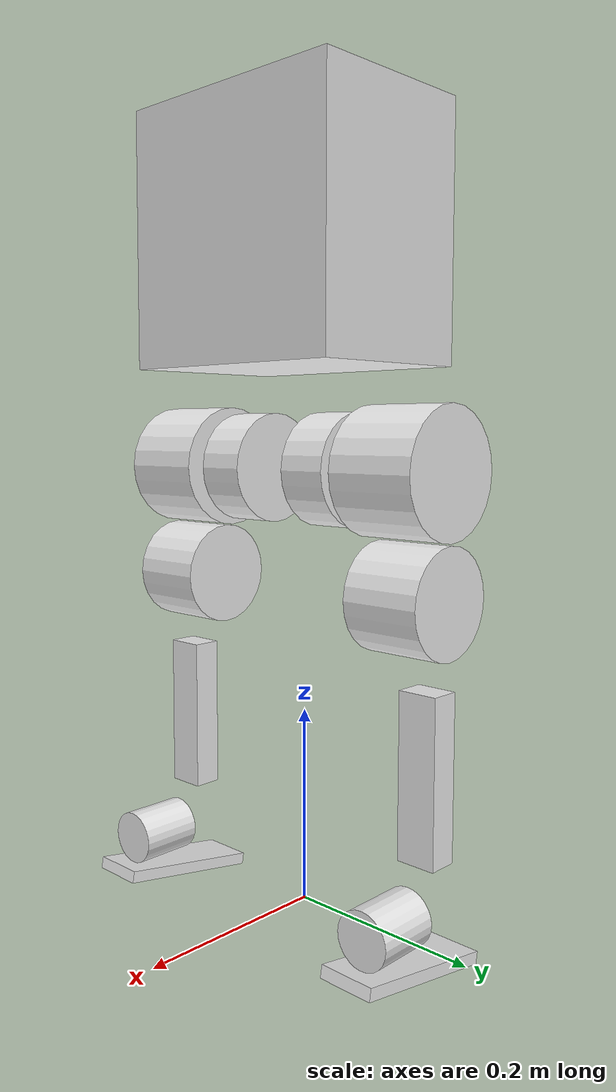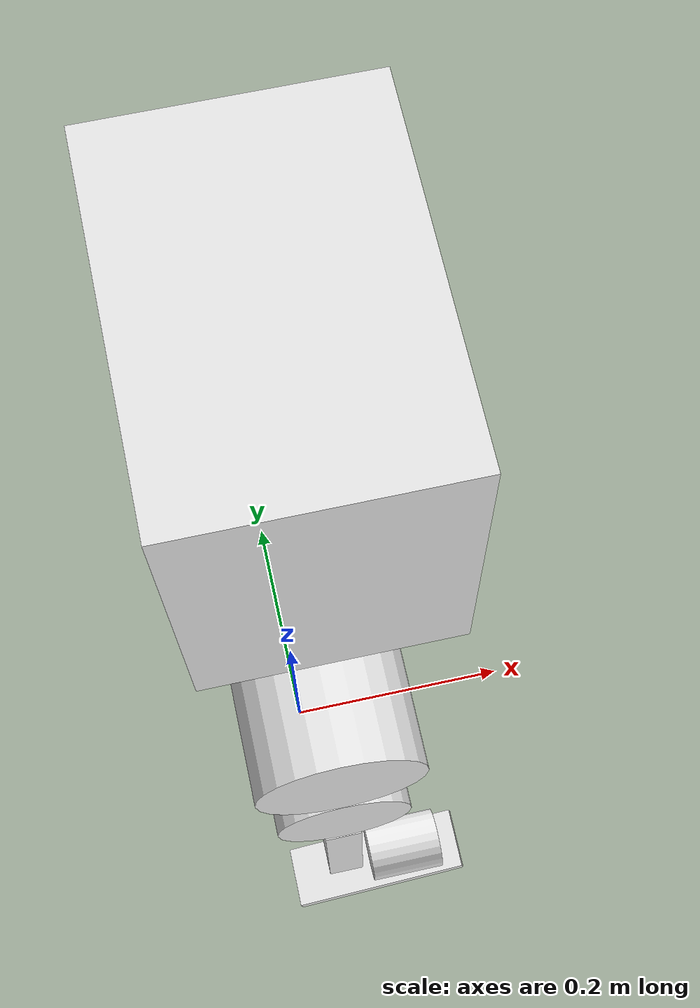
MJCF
<mujoco model="berkeley_humanoid">
  <compiler angle="radian"/>

  <worldbody>
    <body name="torso" pos="0 0 0.55">

      <freejoint name="root"/>

      <inertial pos="0.012 -0.002 0.114" mass="5.378" diaginertia="0.09 0.08 0.05"/>

      <geom size="0.09 0.125 0.125" pos="0.02 0 0.12" type="box" rgba="0.9 0.9 0.9 1"/>

      <body name="ll_hr" pos="0 0.07 0" quat="0.92388 0 0.382683 0">
        <inertial pos="-0.00717501 0.000638 -0.0603296" quat="0.997785 0.00699266 0.066053 0.00374607" mass="0.797" diaginertia="0.00165598 0.00124847 0.000774206"/>
        <joint name="LL_HR" pos="0 0 0" axis="0 0 1" range="-0.610865 0.610865" actuatorfrcrange="-20 20" armature="0.005589" frictionloss="0.3"/>
        <body name="ll_haa" pos="0.0158 0 -0.065" quat="0.707107 0 -0.707107 0">
          <inertial pos="0.000606614 -0.009735 -0.0611092" quat="0.702991 -0.06137 0.0554512 0.706373" mass="0.897" diaginertia="0.0018904 0.0014613 0.000923049"/>
          <joint name="LL_HAA" pos="0 0 0" axis="0 0 1" range="-0.610865 0.610865" actuatorfrcrange="-20 20" armature="0.005589" frictionloss="0.3"/>
          <geom size="0.055 0.025" pos="6.77985e-05 -0.015 -0.0649318" quat="0.653281 0.653281 0.270598 -0.270598" type="cylinder" rgba="0.917647 0.917647 0.917647 1"/>
          <body name="ll_hfe" pos="0 0.0158 -0.065" quat="0.653281 -0.653281 -0.270598 -0.270598">
            <inertial pos="-0.0596998 -0.000999287 0.045473" quat="-0.00572221 0.744789 -0.0182535 0.667026" mass="2.689" diaginertia="0.0191406 0.0181903 0.00583016"/>
            <joint name="LL_HFE" pos="0 0 0" axis="0 0 1" range="-1.74533 0.523599" actuatorfrcrange="-30 30" armature="0.007614" frictionloss="0.3"/>
            <geom size="0.0615 0.045" pos="9.61687e-05 -2.87143e-07 0.0542" quat="0 -0.707107 -0.707107 0" type="cylinder" rgba="0.917647 0.917647 0.917647 1"/>
            <geom size="0.052 0.04" pos="-0.114904 -2.87143e-07 0.0592" quat="0 -0.707107 -0.707107 0" type="cylinder" rgba="0.917647 0.917647 0.917647 1"/>
            <body name="ll_kfe" pos="-0.22 0 0.0742" quat="1 0 0 0">
              <inertial pos="-0.0856948 -0.00928029 -0.002232" quat="-0.11773 0.702823 -0.0559586 0.69932" mass="0.35" diaginertia="0.00161117 0.00159463 9.70556e-05"/>
              <joint name="LL_KFE" pos="0 0 0" axis="0 0 1" range="0 2.0944" actuatorfrcrange="-30 30" armature="0.01215" frictionloss="0.8"/>
              <geom size="0.015 0.02 0.08" pos="-0.0569038 -0.00117229 0" quat="0.5 0.5 0.5 0.5" type="box" rgba="0.917647 0.917647 0.917647 1"/>
              <body name="ll_ffe" pos="-0.18 0 0">
                <inertial pos="-0.00107817 0.0237707 6.8e-05" quat="0.553259 0.458091 -0.532546 0.447717" mass="0.0993228" diaginertia="8.20308e-05 7.84322e-05 9.34827e-06"/>
                <joint name="LL_FFE" pos="0 0 0" axis="0 0 1" range="-0.523599 0.698132" actuatorfrcrange="-20 20" armature="0.005589" frictionloss="1.0"/>
                <body name="ll_faa" pos="0 0.0175 0" quat="0.5 -0.5 -0.5 -0.5">
                  <inertial pos="-2.9e-05 -0.0163978 0.0153387" quat="0.985258 -0.171058 -0.00255986 0.000455342" mass="0.507" diaginertia="0.00109422 0.000978734 0.000375399"/>
                  <joint name="LL_FAA" pos="0 0 0" axis="0 0 1" range="-0.523599 0.523599" actuatorfrcrange="-5 5" armature="0.0004941" frictionloss="0.1"/>
                  <geom size="0.08 0.0275 0.006" pos="0 -0.0429038 0.0133277" quat="0.45452 -0.541675 -0.541675 -0.45452" type="box" rgba="0.917647 0.917647 0.917647 1"/>
                  <geom size="0.027 0.0325" pos="0 9.61687e-05 0.0388277" quat="0 -0.707107 -0.707107 0" type="cylinder" rgba="0.917647 0.917647 0.917647 1"/>
                </body>
              </body>
            </body>
          </body>
        </body>
      </body>

      <body name="lr_hr" pos="0 -0.07 0" quat="0.92388 0 0.382683 0">
        <inertial pos="-0.00717501 -0.000638 -0.0603296" quat="0.997804 -0.00433689 0.066057 0.0019766" mass="0.797" diaginertia="0.00165632 0.00124845 0.000774613"/>
        <joint name="LR_HR" pos="0 0 0" axis="0 0 1" range="-0.610865 0.610865" actuatorfrcrange="-20 20" armature="0.005589" frictionloss="0.3"/>
        <body name="lr_haa" pos="0.0158 0 -0.065" quat="0.707107 0 -0.707107 0">
          <inertial pos="0.000606614 0.009735 -0.0611092" quat="0.704792 0.0582267 -0.0597566 0.704491" mass="0.897" diaginertia="0.00189204 0.00146613 0.000918492"/>
          <joint name="LR_HAA" pos="0 0 0" axis="0 0 1" range="-0.610865 0.610865" actuatorfrcrange="-20 20" armature="0.005589" frictionloss="0.3"/>
          <geom size="0.055 0.025" pos="6.77985e-05 0.015 -0.0649318" quat="0.653281 0.653281 0.270598 -0.270598" type="cylinder" rgba="0.917647 0.917647 0.917647 1"/>
          <body name="lr_hfe" pos="0 -0.0158 -0.065" quat="0.653281 -0.653281 -0.270598 -0.270598">
            <inertial pos="-0.0596998 -0.000999287 -0.045473" quat="0.018407 0.667006 0.00579507 0.744802" mass="2.689" diaginertia="0.0191386 0.0181883 0.00582996"/>
            <joint name="LR_HFE" pos="0 0 0" axis="0 0 1" range="-1.74533 0.523599" actuatorfrcrange="-30 30" armature="0.007614" frictionloss="0.3"/>
            <geom size="0.0615 0.045" pos="9.61687e-05 -2.87143e-07 -0.0542" quat="0 -0.707107 -0.707107 0" type="cylinder" rgba="0.917647 0.917647 0.917647 1"/>
            <geom size="0.052 0.04" pos="-0.114904 -2.87143e-07 -0.0592" quat="0 -0.707107 -0.707107 0" type="cylinder" rgba="0.917647 0.917647 0.917647 1"/>
            <body name="lr_kfe" pos="-0.22 0 -0.0742" quat="1 0 0 0">
              <inertial pos="-0.0856948 -0.00928029 0.002232" quat="0.055958 0.69932 0.11773 0.702823" mass="0.35" diaginertia="0.00161117 0.00159463 9.70556e-05"/>
              <joint name="LR_KFE" pos="0 0 0" axis="0 0 1" range="0 2.0944" actuatorfrcrange="-30 30" armature="0.01215" frictionloss="0.8"/>
              <geom size="0.015 0.02 0.08" pos="-0.0569038 -0.00117229 0" quat="0.5 0.5 0.5 0.5" type="box" rgba="0.917647 0.917647 0.917647 1"/>
              <body name="lr_ffe" pos="-0.18 0 0" quat="1 0 0 0">
                <inertial pos="-0.00107817 0.0237707 -6.8e-05" quat="0.532548 0.447721 -0.553256 0.45809" mass="0.0993223" diaginertia="8.20306e-05 7.84321e-05 9.34825e-06"/>
                <joint name="LR_FFE" pos="0 0 0" axis="0 0 1" range="-0.523599 0.698132" actuatorfrcrange="-20 20" armature="0.005589" frictionloss="1.0"/>
                <body name="lr_faa" pos="0 0.0175 0" quat="0.5 -0.5 -0.5 -0.5">
                  <inertial pos="2.9e-05 -0.0163368 0.0153387" quat="0.985231 -0.171209 0.00251902 -0.000808066" mass="0.507" diaginertia="0.00109488 0.000978788 0.000376011"/>
                  <joint name="LR_FAA" pos="0 0 0" axis="0 0 1" range="-0.523599 0.523599" actuatorfrcrange="-5 5" armature="0.0004941" frictionloss="0.1"/>
                  <geom size="0.08 0.0275 0.006" pos="0 -0.0429038 0.0133277" quat="-0.45452 0.541675 0.541675 0.45452" type="box" rgba="0.917647 0.917647 0.917647 1"/>
                  <geom size="0.027 0.0325" pos="0 9.61687e-05 0.0388277" quat="0 0.707107 0.707107 0" type="cylinder" rgba="0.917647 0.917647 0.917647 1"/>
                </body>
              </body>
            </body>
          </body>
        </body>
      </body>
    </body>
    </worldbody>
</mujoco>
